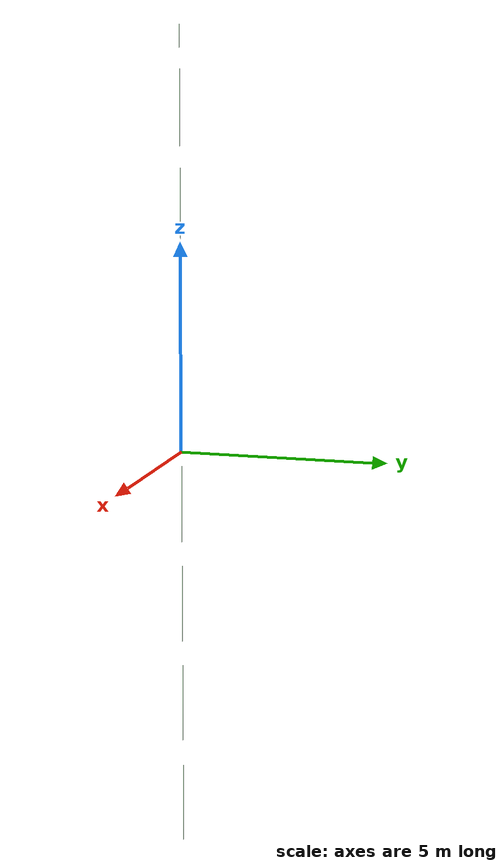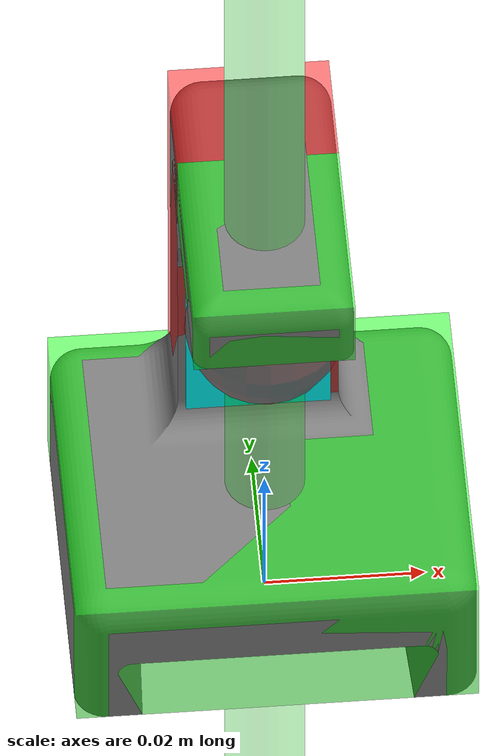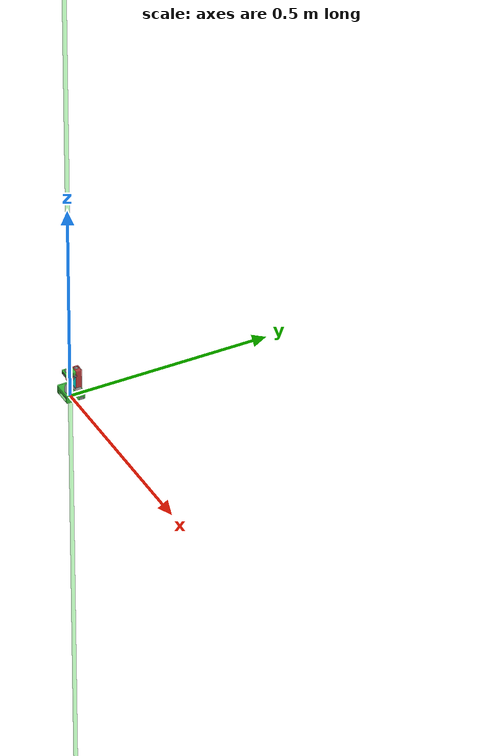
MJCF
<mujoco model="hook">
    <compiler angle="radian"/>

    <asset>
        <mesh class="hook" name="hook_mesh" file="meshes/hook_gripper/gripper_hook_v2.stl" />
    </asset>

    <default>
        <default class="hook">
            <mesh scale="0.001 0.001 0.001" />
        </default>
    </default>

    <worldbody>
        <body name="hook_gripper" pos="0 0 0" euler="1.5708 -1.5708 0">
            <site name="ft_frame" pos="0 5.5E-03 0" size="0.01 0.01 0.01" rgba="1 0 0 1" type="sphere" group="1"/>
            <geom name="hook_vis" type="mesh" mesh="hook_mesh" group="1" pos="0 0 0" euler="0 0 0" contype="0" conaffinity="0"/>
            <geom name="base_col" type="box" pos="-2.5E-03 10E-03 0E-03" size="22.5E-03 10E-03 25E-03" rgba="0 1 0 0.5" />
            <geom name="hook_1_col" type="box" pos="-17.5E-03 45E-03 0E-03" size="7.5E-03 25E-03 10E-03" rgba="1 0 0 0.5" />
            <geom name="inner_pad" type="box" pos="-9.9E-03 40E-03 0E-03" size="0.1E-03 20E-03 9E-03" rgba="0 1 1 1" friction = "2 0.05 0.0001" priority="1"/>
            <geom name="hook_2_col" type="box" pos="2.5E-03 65E-03 0E-03" size="12.5E-03 5E-03 10E-03" rgba="0 1 0 0.5" />
            <geom name="middle_pad" type="box" pos="0E-03 59.9E-03 0E-03" size="10E-03 0.1E-03 9E-03" rgba="0 1 1 1" friction = "2 0.05 0.0001" priority="1"/>
            <inertial pos="-6.887E-03 26.533E-03 0.014E-03" mass="57.70E-03" fullinertia="35363.467E-09 18046.14E-09 35665.868E-09 1310.376E-09 -7.748E-09 16.896E-09" />
            <!-- This site was added for visualization. -->
            <body name="eef" pos="0 0.05 0" euler="1.5708 0 0">
                <site name="grip_site" pos="0 0 0" size="0.01 0.01 0.01" rgba="1 0 0 0.5" type="sphere" group="1"/>
                <site name="ee_x" pos="0.1 0 0" size="0.005 .1"  quat="0.707105  0 0.707108 0 " rgba="1 0 0 0" type="cylinder" group="1"/>
                <site name="ee_y" pos="0 0.1 0" size="0.005 .1" quat="0.707105 0.707108 0 0" rgba="0 1 0 0" type="cylinder" group="1"/>
                <site name="ee_z" pos="0 0 0.1" size="0.005 .1" quat="1 0 0 0" rgba="0 0 1 0" type="cylinder" group="1"/>
                <!-- This site was added for visualization. -->
                <site name="grip_site_cylinder" pos="0 0 0" size="0.005 10" rgba="0 1 0 0.3" type="cylinder" group="1"/>
            </body>
        </body>
    </worldbody>

    <sensor>
        <force name="force_ee" site="ft_frame"/>
        <torque name="torque_ee" site="ft_frame"/>
    </sensor>
</mujoco>
